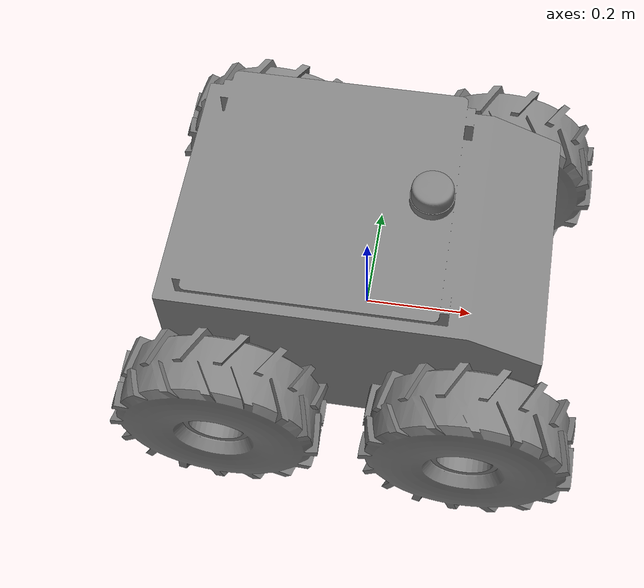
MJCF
<mujoco model="copernicus">
    <compiler angle="radian" meshdir="meshes/" />
    <option tolerance="1e-06" collision="predefined" cone="elliptic" jacobian="sparse" solver="CG" iterations="30" />
    <size njmax="500" nconmax="100" />
    <asset>
        <mesh name="copernicus" file="copernicus.stl" scale="0.1 0.1 0.1" />
        <mesh name="wheel" file="wheel.stl" scale="0.1 0.1 0.1" />
        <mesh name="rplidar" file="rplidar.stl" />
    </asset>
    <worldbody>
        <geom type="mesh" mesh="copernicus" />
        <geom pos="0.109 0 0.365" type="mesh" mesh="rplidar" />
        <body name="front_right_wheel" pos="0.2203 -0.2949 0.073">
            <inertial pos="0 0 0" quat="0.878258 0.144321 -0.216139 0.401396" mass="2.637" diaginertia="0.646667 0.646667 0.646667" />
            <joint name="front_right_wheel_joint" pos="0 0 0" axis="0 1 0" />
            <geom type="mesh" mesh="wheel" />
        </body>
        <body name="back_right_wheel" pos="-0.2203 -0.2949 0.073">
            <inertial pos="0 0 0" quat="0.878258 0.144321 -0.216139 0.401396" mass="2.637" diaginertia="0.646667 0.646667 0.646667" />
            <joint name="back_right_wheel_joint" pos="0 0 0" axis="0 1 0" />
            <geom type="mesh" mesh="wheel" />
        </body>
        <body name="front_left_wheel" pos="0.2203 0.2949 0.073">
            <inertial pos="0 0 0" quat="0.878258 0.144321 -0.216139 0.401396" mass="2.637" diaginertia="0.646667 0.646667 0.646667" />
            <joint name="front_left_wheel_joint" pos="0 0 0" axis="0 1 0" />
            <geom type="mesh" mesh="wheel" />
        </body>
        <body name="back_left_wheel" pos="-0.2203 0.2949 0.073">
            <inertial pos="0 0 0" quat="0.878258 0.144321 -0.216139 0.401396" mass="2.637" diaginertia="0.646667 0.646667 0.646667" />
            <joint name="back_left_wheel_joint" pos="0 0 0" axis="0 1 0" />
            <geom type="mesh" mesh="wheel" />
        </body>
    </worldbody>
</mujoco>
